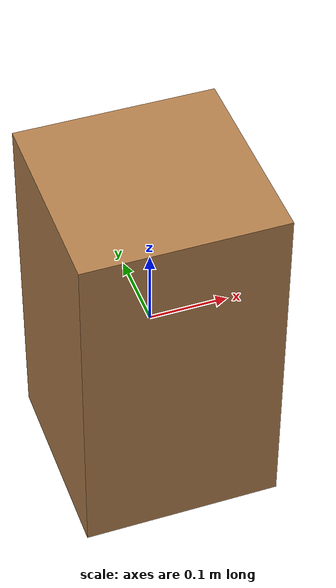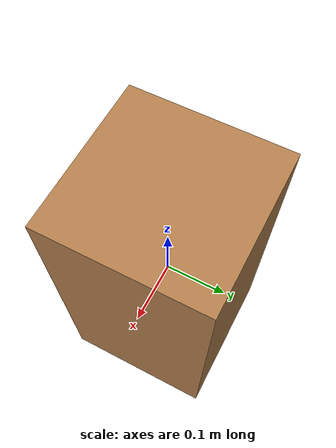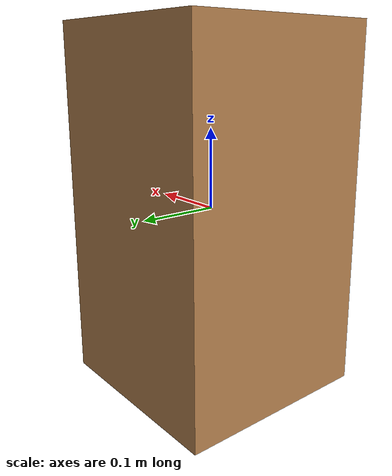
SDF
<?xml version="1.0"?>
<sdf version="1.6">
  <model name="tray_pedestal">
    <static>true</static>
    <link name="link">
      <collision name="collision">
        <geometry><box><size>0.25 0.25 0.45</size></box></geometry>
        <surface><friction><ode><mu>1.0</mu><mu2>1.0</mu2></ode></friction></surface>
      </collision>
      <visual name="visual">
        <geometry><box><size>0.25 0.25 0.45</size></box></geometry>
        <material><script>
          <uri>file://media/materials/scripts/gazebo.material</uri>
          <name>Gazebo/Wood</name>
        </script></material>
      </visual>
    </link>
  </model>
</sdf>
